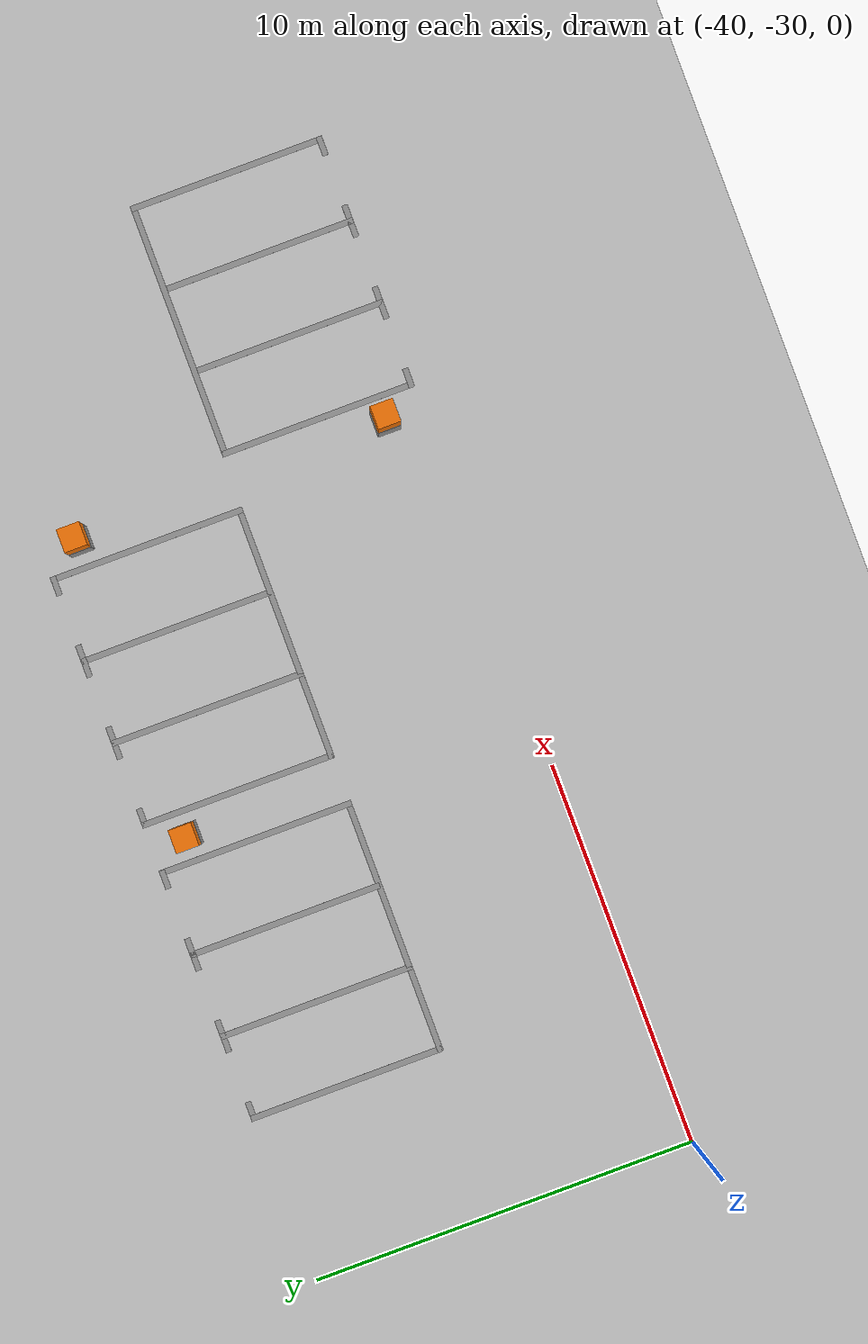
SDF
<sdf version="1.7">
 <world name="default">
  <model name="ground_plane">
   <static>1</static>
   <link name="link">
    <collision name="collision">
     <geometry><plane><normal>0 0 1</normal><size>100 100</size></plane></geometry>
     <surface><friction><ode><mu>100</mu><mu2>50</mu2></ode></friction></surface>
    </collision>
    <visual name="visual">
     <cast_shadows>0</cast_shadows>
     <geometry><plane><normal>0 0 1</normal><size>100 100</size></plane></geometry>
     <material>
      <script><uri>file://media/materials/scripts/gazebo.material</uri><name>Gazebo/Grey</name></script>
     </material>
    </visual>
   </link>
  </model>
  <model name="carport1_4_clone_3">
   <pose>-31.9372 -24.1563 0 0 -0 3.14141</pose>
   <link name="Wall_105">
    <collision name="Wall_105_Collision">
     <geometry><box><size>0.61 0.6 1.5</size></box></geometry>
     <pose>0 0 0.75 0 -0 0</pose>
    </collision>
    <visual name="Wall_105_Visual">
     <pose>0 0 0.75 0 -0 0</pose>
     <geometry><box><size>0.61 0.6 1.5</size></box></geometry>
     <material>
      <script><uri>file://media/materials/scripts/gazebo.material</uri><name>Gazebo/Grey</name></script>
      <ambient>1 1 1 1</ambient>
     </material>
     <meta><layer>0</layer></meta>
    </visual>
    <pose>-3.47407 -3.2865 0 0 -0 0</pose>
   </link>
   <link name="Wall_116">
    <collision name="Wall_116_Collision">
     <geometry><box><size>5.1 0.15 0.005</size></box></geometry>
     <pose>0 0 0.0025 0 -0 0</pose>
    </collision>
    <visual name="Wall_116_Visual">
     <pose>0 0 0.0025 0 -0 0</pose>
     <geometry><box><size>5.1 0.15 0.005</size></box></geometry>
     <material>
      <script><uri>file://media/materials/scripts/gazebo.material</uri><name>Gazebo/Grey</name></script>
      <ambient>1 1 1 1</ambient>
     </material>
     <meta><layer>0</layer></meta>
    </visual>
    <pose>-2.82307 -1.7385 0 0 -0 1.5708</pose>
   </link>
   <link name="Wall_124">
    <collision name="Wall_124_Collision">
     <geometry><box><size>5.1 0.15 0.005</size></box></geometry>
     <pose>0 0 0.0025 0 -0 0</pose>
    </collision>
    <visual name="Wall_124_Visual">
     <pose>0 0 0.0025 0 -0 0</pose>
     <geometry><box><size>5.1 0.15 0.005</size></box></geometry>
     <material>
      <script><uri>file://media/materials/scripts/gazebo.material</uri><name>Gazebo/Grey</name></script>
      <ambient>1 1 1 1</ambient>
     </material>
     <meta><layer>0</layer></meta>
    </visual>
    <pose>3.70393 -1.7305 0 0 -0 1.5708</pose>
   </link>
   <link name="Wall_146">
    <collision name="Wall_146_Collision">
     <geometry><box><size>6.67711 0.15 0.005</size></box></geometry>
     <pose>0 0 0.0025 0 -0 0</pose>
    </collision>
    <visual name="Wall_146_Visual">
     <pose>0 0 0.0025 0 -0 0</pose>
     <geometry><box><size>6.67711 0.15 0.005</size></box></geometry>
     <material>
      <script><uri>file://media/materials/scripts/gazebo.material</uri><name>Gazebo/Grey</name></script>
      <ambient>1 1 1 1</ambient>
     </material>
     <meta><layer>0</layer></meta>
    </visual>
    <pose>0.440428 0.7405 0 0 -0 0.001226</pose>
   </link>
   <link name="Wall_168">
    <collision name="Wall_168_Collision">
     <geometry><box><size>5.1 0.15 0.005</size></box></geometry>
     <pose>0 0 0.0025 0 -0 0</pose>
    </collision>
    <visual name="Wall_168_Visual">
     <pose>0 0 0.0025 0 -0 0</pose>
     <geometry><box><size>5.1 0.15 0.005</size></box></geometry>
     <material>
      <script><uri>file://media/materials/scripts/gazebo.material</uri><name>Gazebo/Grey</name></script>
      <ambient>1 1 1 1</ambient>
     </material>
     <meta><layer>0</layer></meta>
    </visual>
    <pose>-0.64827 -1.73839 0 0 -0 1.57088</pose>
   </link>
   <link name="Wall_173">
    <collision name="Wall_173_Collision">
     <geometry><box><size>5.1 0.15 0.005</size></box></geometry>
     <pose>0 0 0.0025 0 -0 0</pose>
    </collision>
    <visual name="Wall_173_Visual">
     <pose>0 0 0.0025 0 -0 0</pose>
     <geometry><box><size>5.1 0.15 0.005</size></box></geometry>
     <material>
      <script><uri>file://media/materials/scripts/gazebo.material</uri><name>Gazebo/Grey</name></script>
      <ambient>1 1 1 1</ambient>
     </material>
     <meta><layer>0</layer></meta>
    </visual>
    <pose>1.52673 -1.73839 0 0 -0 1.57088</pose>
   </link>
   <link name="Wall_177">
    <collision name="Wall_177_Collision">
     <geometry><box><size>0.6 0.59 3</size></box></geometry>
     <pose>0 0 1.5 0 -0 0</pose>
    </collision>
    <visual name="Wall_177_Visual">
     <pose>0 0 1.5 0 -0 0</pose>
     <geometry><box><size>0.6 0.59 3</size></box></geometry>
     <material>
      <script><uri>file://media/materials/scripts/gazebo.material</uri><name>Gazebo/Grey</name></script>
      <ambient>0.996078 0.47451 0.0196078 1</ambient>
     </material>
     <meta><layer>0</layer></meta>
    </visual>
    <pose>-3.47407 -3.2865 0 0 -0 0</pose>
   </link>
   <link name="Wall_179">
    <collision name="Wall_179_Collision">
     <geometry><box><size>0.5 0.15 0.005</size></box></geometry>
     <pose>0 0 0.0025 0 -0 0</pose>
    </collision>
    <visual name="Wall_179_Visual">
     <pose>0 0 0.0025 0 -0 0</pose>
     <geometry><box><size>0.5 0.15 0.005</size></box></geometry>
     <material>
      <script><uri>file://media/materials/scripts/gazebo.material</uri><name>Gazebo/Grey</name></script>
      <ambient>1 1 1 1</ambient>
     </material>
     <meta><layer>0</layer></meta>
    </visual>
    <pose>-2.64807 -4.2135 0 0 -0 0</pose>
   </link>
   <link name="Wall_181">
    <collision name="Wall_181_Collision">
     <geometry><box><size>0.5 0.15 0.005</size></box></geometry>
     <pose>0 0 0.0025 0 -0 0</pose>
    </collision>
    <visual name="Wall_181_Visual">
     <pose>0 0 0.0025 0 -0 0</pose>
     <geometry><box><size>0.5 0.15 0.005</size></box></geometry>
     <material>
      <script><uri>file://media/materials/scripts/gazebo.material</uri><name>Gazebo/Grey</name></script>
      <ambient>1 1 1 1</ambient>
     </material>
     <meta><layer>0</layer></meta>
    </visual>
    <pose>-0.823072 -4.2135 0 0 -0 3.14159</pose>
   </link>
   <link name="Wall_183">
    <collision name="Wall_183_Collision">
     <geometry><box><size>0.5 0.15 0.005</size></box></geometry>
     <pose>0 0 0.0025 0 -0 0</pose>
    </collision>
    <visual name="Wall_183_Visual">
     <pose>0 0 0.0025 0 -0 0</pose>
     <geometry><box><size>0.5 0.15 0.005</size></box></geometry>
     <material>
      <script><uri>file://media/materials/scripts/gazebo.material</uri><name>Gazebo/Grey</name></script>
      <ambient>1 1 1 1</ambient>
     </material>
     <meta><layer>0</layer></meta>
    </visual>
    <pose>-0.473072 -4.2135 0 0 -0 0</pose>
   </link>
   <link name="Wall_185">
    <collision name="Wall_185_Collision">
     <geometry><box><size>0.5 0.15 0.005</size></box></geometry>
     <pose>0 0 0.0025 0 -0 0</pose>
    </collision>
    <visual name="Wall_185_Visual">
     <pose>0 0 0.0025 0 -0 0</pose>
     <geometry><box><size>0.5 0.15 0.005</size></box></geometry>
     <material>
      <script><uri>file://media/materials/scripts/gazebo.material</uri><name>Gazebo/Grey</name></script>
      <ambient>1 1 1 1</ambient>
     </material>
     <meta><layer>0</layer></meta>
    </visual>
    <pose>1.35193 -4.2135 0 0 -0 3.14159</pose>
   </link>
   <link name="Wall_187">
    <collision name="Wall_187_Collision">
     <geometry><box><size>0.5 0.15 0.005</size></box></geometry>
     <pose>0 0 0.0025 0 -0 0</pose>
    </collision>
    <visual name="Wall_187_Visual">
     <pose>0 0 0.0025 0 -0 0</pose>
     <geometry><box><size>0.5 0.15 0.005</size></box></geometry>
     <material>
      <script><uri>file://media/materials/scripts/gazebo.material</uri><name>Gazebo/Grey</name></script>
      <ambient>1 1 1 1</ambient>
     </material>
     <meta><layer>0</layer></meta>
    </visual>
    <pose>1.70193 -4.2135 0 0 -0 0</pose>
   </link>
   <link name="Wall_189">
    <collision name="Wall_189_Collision">
     <geometry><box><size>0.5 0.15 0.005</size></box></geometry>
     <pose>0 0 0.0025 0 -0 0</pose>
    </collision>
    <visual name="Wall_189_Visual">
     <pose>0 0 0.0025 0 -0 0</pose>
     <geometry><box><size>0.5 0.15 0.005</size></box></geometry>
     <material>
      <script><uri>file://media/materials/scripts/gazebo.material</uri><name>Gazebo/Grey</name></script>
      <ambient>1 1 1 1</ambient>
     </material>
     <meta><layer>0</layer></meta>
    </visual>
    <pose>3.52893 -4.2055 0 0 -0 3.14159</pose>
   </link>
   <static>1</static>
  </model>
  <model name="carport1_4_clone_4">
   <pose>-24.1308 -24.1527 0 0 -0 3.14141</pose>
   <link name="Wall_105">
    <collision name="Wall_105_Collision">
     <geometry><box><size>0.61 0.6 1.5</size></box></geometry>
     <pose>0 0 0.75 0 -0 0</pose>
    </collision>
    <visual name="Wall_105_Visual">
     <pose>0 0 0.75 0 -0 0</pose>
     <geometry><box><size>0.61 0.6 1.5</size></box></geometry>
     <material>
      <script><uri>file://media/materials/scripts/gazebo.material</uri><name>Gazebo/Grey</name></script>
      <ambient>1 1 1 1</ambient>
     </material>
     <meta><layer>0</layer></meta>
    </visual>
    <pose>-3.47407 -3.2865 0 0 -0 0</pose>
   </link>
   <link name="Wall_116">
    <collision name="Wall_116_Collision">
     <geometry><box><size>5.1 0.15 0.005</size></box></geometry>
     <pose>0 0 0.0025 0 -0 0</pose>
    </collision>
    <visual name="Wall_116_Visual">
     <pose>0 0 0.0025 0 -0 0</pose>
     <geometry><box><size>5.1 0.15 0.005</size></box></geometry>
     <material>
      <script><uri>file://media/materials/scripts/gazebo.material</uri><name>Gazebo/Grey</name></script>
      <ambient>1 1 1 1</ambient>
     </material>
     <meta><layer>0</layer></meta>
    </visual>
    <pose>-2.82307 -1.7385 0 0 -0 1.5708</pose>
   </link>
   <link name="Wall_124">
    <collision name="Wall_124_Collision">
     <geometry><box><size>5.1 0.15 0.005</size></box></geometry>
     <pose>0 0 0.0025 0 -0 0</pose>
    </collision>
    <visual name="Wall_124_Visual">
     <pose>0 0 0.0025 0 -0 0</pose>
     <geometry><box><size>5.1 0.15 0.005</size></box></geometry>
     <material>
      <script><uri>file://media/materials/scripts/gazebo.material</uri><name>Gazebo/Grey</name></script>
      <ambient>1 1 1 1</ambient>
     </material>
     <meta><layer>0</layer></meta>
    </visual>
    <pose>3.70393 -1.7305 0 0 -0 1.5708</pose>
   </link>
   <link name="Wall_146">
    <collision name="Wall_146_Collision">
     <geometry><box><size>6.67711 0.15 0.005</size></box></geometry>
     <pose>0 0 0.0025 0 -0 0</pose>
    </collision>
    <visual name="Wall_146_Visual">
     <pose>0 0 0.0025 0 -0 0</pose>
     <geometry><box><size>6.67711 0.15 0.005</size></box></geometry>
     <material>
      <script><uri>file://media/materials/scripts/gazebo.material</uri><name>Gazebo/Grey</name></script>
      <ambient>1 1 1 1</ambient>
     </material>
     <meta><layer>0</layer></meta>
    </visual>
    <pose>0.440428 0.7405 0 0 -0 0.001226</pose>
   </link>
   <link name="Wall_168">
    <collision name="Wall_168_Collision">
     <geometry><box><size>5.1 0.15 0.005</size></box></geometry>
     <pose>0 0 0.0025 0 -0 0</pose>
    </collision>
    <visual name="Wall_168_Visual">
     <pose>0 0 0.0025 0 -0 0</pose>
     <geometry><box><size>5.1 0.15 0.005</size></box></geometry>
     <material>
      <script><uri>file://media/materials/scripts/gazebo.material</uri><name>Gazebo/Grey</name></script>
      <ambient>1 1 1 1</ambient>
     </material>
     <meta><layer>0</layer></meta>
    </visual>
    <pose>-0.64827 -1.73839 0 0 -0 1.57088</pose>
   </link>
   <link name="Wall_173">
    <collision name="Wall_173_Collision">
     <geometry><box><size>5.1 0.15 0.005</size></box></geometry>
     <pose>0 0 0.0025 0 -0 0</pose>
    </collision>
    <visual name="Wall_173_Visual">
     <pose>0 0 0.0025 0 -0 0</pose>
     <geometry><box><size>5.1 0.15 0.005</size></box></geometry>
     <material>
      <script><uri>file://media/materials/scripts/gazebo.material</uri><name>Gazebo/Grey</name></script>
      <ambient>1 1 1 1</ambient>
     </material>
     <meta><layer>0</layer></meta>
    </visual>
    <pose>1.52673 -1.73839 0 0 -0 1.57088</pose>
   </link>
   <link name="Wall_177">
    <collision name="Wall_177_Collision">
     <geometry><box><size>0.6 0.59 3</size></box></geometry>
     <pose>0 0 1.5 0 -0 0</pose>
    </collision>
    <visual name="Wall_177_Visual">
     <pose>0 0 1.5 0 -0 0</pose>
     <geometry><box><size>0.6 0.59 3</size></box></geometry>
     <material>
      <script><uri>file://media/materials/scripts/gazebo.material</uri><name>Gazebo/Grey</name></script>
      <ambient>0.996078 0.47451 0.0196078 1</ambient>
     </material>
     <meta><layer>0</layer></meta>
    </visual>
    <pose>-3.47407 -3.2865 0 0 -0 0</pose>
   </link>
   <link name="Wall_179">
    <collision name="Wall_179_Collision">
     <geometry><box><size>0.5 0.15 0.005</size></box></geometry>
     <pose>0 0 0.0025 0 -0 0</pose>
    </collision>
    <visual name="Wall_179_Visual">
     <pose>0 0 0.0025 0 -0 0</pose>
     <geometry><box><size>0.5 0.15 0.005</size></box></geometry>
     <material>
      <script><uri>file://media/materials/scripts/gazebo.material</uri><name>Gazebo/Grey</name></script>
      <ambient>1 1 1 1</ambient>
     </material>
     <meta><layer>0</layer></meta>
    </visual>
    <pose>-2.64807 -4.2135 0 0 -0 0</pose>
   </link>
   <link name="Wall_181">
    <collision name="Wall_181_Collision">
     <geometry><box><size>0.5 0.15 0.005</size></box></geometry>
     <pose>0 0 0.0025 0 -0 0</pose>
    </collision>
    <visual name="Wall_181_Visual">
     <pose>0 0 0.0025 0 -0 0</pose>
     <geometry><box><size>0.5 0.15 0.005</size></box></geometry>
     <material>
      <script><uri>file://media/materials/scripts/gazebo.material</uri><name>Gazebo/Grey</name></script>
      <ambient>1 1 1 1</ambient>
     </material>
     <meta><layer>0</layer></meta>
    </visual>
    <pose>-0.823072 -4.2135 0 0 -0 3.14159</pose>
   </link>
   <link name="Wall_183">
    <collision name="Wall_183_Collision">
     <geometry><box><size>0.5 0.15 0.005</size></box></geometry>
     <pose>0 0 0.0025 0 -0 0</pose>
    </collision>
    <visual name="Wall_183_Visual">
     <pose>0 0 0.0025 0 -0 0</pose>
     <geometry><box><size>0.5 0.15 0.005</size></box></geometry>
     <material>
      <script><uri>file://media/materials/scripts/gazebo.material</uri><name>Gazebo/Grey</name></script>
      <ambient>1 1 1 1</ambient>
     </material>
     <meta><layer>0</layer></meta>
    </visual>
    <pose>-0.473072 -4.2135 0 0 -0 0</pose>
   </link>
   <link name="Wall_185">
    <collision name="Wall_185_Collision">
     <geometry><box><size>0.5 0.15 0.005</size></box></geometry>
     <pose>0 0 0.0025 0 -0 0</pose>
    </collision>
    <visual name="Wall_185_Visual">
     <pose>0 0 0.0025 0 -0 0</pose>
     <geometry><box><size>0.5 0.15 0.005</size></box></geometry>
     <material>
      <script><uri>file://media/materials/scripts/gazebo.material</uri><name>Gazebo/Grey</name></script>
      <ambient>1 1 1 1</ambient>
     </material>
     <meta><layer>0</layer></meta>
    </visual>
    <pose>1.35193 -4.2135 0 0 -0 3.14159</pose>
   </link>
   <link name="Wall_187">
    <collision name="Wall_187_Collision">
     <geometry><box><size>0.5 0.15 0.005</size></box></geometry>
     <pose>0 0 0.0025 0 -0 0</pose>
    </collision>
    <visual name="Wall_187_Visual">
     <pose>0 0 0.0025 0 -0 0</pose>
     <geometry><box><size>0.5 0.15 0.005</size></box></geometry>
     <material>
      <script><uri>file://media/materials/scripts/gazebo.material</uri><name>Gazebo/Grey</name></script>
      <ambient>1 1 1 1</ambient>
     </material>
     <meta><layer>0</layer></meta>
    </visual>
    <pose>1.70193 -4.2135 0 0 -0 0</pose>
   </link>
   <link name="Wall_189">
    <collision name="Wall_189_Collision">
     <geometry><box><size>0.5 0.15 0.005</size></box></geometry>
     <pose>0 0 0.0025 0 -0 0</pose>
    </collision>
    <visual name="Wall_189_Visual">
     <pose>0 0 0.0025 0 -0 0</pose>
     <geometry><box><size>0.5 0.15 0.005</size></box></geometry>
     <material>
      <script><uri>file://media/materials/scripts/gazebo.material</uri><name>Gazebo/Grey</name></script>
      <ambient>1 1 1 1</ambient>
     </material>
     <meta><layer>0</layer></meta>
    </visual>
    <pose>3.52893 -4.2055 0 0 -0 3.14159</pose>
   </link>
   <static>1</static>
  </model>
  <model name="carport1_3_clone_clone_5">
   <pose>-17.0216 -25.7748 0 0 -0 0</pose>
   <link name="Wall_105">
    <collision name="Wall_105_Collision">
     <geometry><box><size>0.61 0.6 1.5</size></box></geometry>
     <pose>0 0 0.75 0 -0 0</pose>
    </collision>
    <visual name="Wall_105_Visual">
     <pose>0 0 0.75 0 -0 0</pose>
     <geometry><box><size>0.61 0.6 1.5</size></box></geometry>
     <material>
      <script><uri>file://media/materials/scripts/gazebo.material</uri><name>Gazebo/Grey</name></script>
      <ambient>1 1 1 1</ambient>
     </material>
     <meta><layer>0</layer></meta>
    </visual>
    <pose>-3.47407 -3.2865 0 0 -0 0</pose>
   </link>
   <link name="Wall_116">
    <collision name="Wall_116_Collision">
     <geometry><box><size>5.1 0.15 0.005</size></box></geometry>
     <pose>0 0 0.0025 0 -0 0</pose>
    </collision>
    <visual name="Wall_116_Visual">
     <pose>0 0 0.0025 0 -0 0</pose>
     <geometry><box><size>5.1 0.15 0.005</size></box></geometry>
     <material>
      <script><uri>file://media/materials/scripts/gazebo.material</uri><name>Gazebo/Grey</name></script>
      <ambient>1 1 1 1</ambient>
     </material>
     <meta><layer>0</layer></meta>
    </visual>
    <pose>-2.82307 -1.7385 0 0 -0 1.5708</pose>
   </link>
   <link name="Wall_124">
    <collision name="Wall_124_Collision">
     <geometry><box><size>5.1 0.15 0.005</size></box></geometry>
     <pose>0 0 0.0025 0 -0 0</pose>
    </collision>
    <visual name="Wall_124_Visual">
     <pose>0 0 0.0025 0 -0 0</pose>
     <geometry><box><size>5.1 0.15 0.005</size></box></geometry>
     <material>
      <script><uri>file://media/materials/scripts/gazebo.material</uri><name>Gazebo/Grey</name></script>
      <ambient>1 1 1 1</ambient>
     </material>
     <meta><layer>0</layer></meta>
    </visual>
    <pose>3.70393 -1.7305 0 0 -0 1.5708</pose>
   </link>
   <link name="Wall_146">
    <collision name="Wall_146_Collision">
     <geometry><box><size>6.67711 0.15 0.005</size></box></geometry>
     <pose>0 0 0.0025 0 -0 0</pose>
    </collision>
    <visual name="Wall_146_Visual">
     <pose>0 0 0.0025 0 -0 0</pose>
     <geometry><box><size>6.67711 0.15 0.005</size></box></geometry>
     <material>
      <script><uri>file://media/materials/scripts/gazebo.material</uri><name>Gazebo/Grey</name></script>
      <ambient>1 1 1 1</ambient>
     </material>
     <meta><layer>0</layer></meta>
    </visual>
    <pose>0.440428 0.7405 0 0 -0 0.001226</pose>
   </link>
   <link name="Wall_168">
    <collision name="Wall_168_Collision">
     <geometry><box><size>5.1 0.15 0.005</size></box></geometry>
     <pose>0 0 0.0025 0 -0 0</pose>
    </collision>
    <visual name="Wall_168_Visual">
     <pose>0 0 0.0025 0 -0 0</pose>
     <geometry><box><size>5.1 0.15 0.005</size></box></geometry>
     <material>
      <script><uri>file://media/materials/scripts/gazebo.material</uri><name>Gazebo/Grey</name></script>
      <ambient>1 1 1 1</ambient>
     </material>
     <meta><layer>0</layer></meta>
    </visual>
    <pose>-0.64827 -1.73839 0 0 -0 1.57088</pose>
   </link>
   <link name="Wall_173">
    <collision name="Wall_173_Collision">
     <geometry><box><size>5.1 0.15 0.005</size></box></geometry>
     <pose>0 0 0.0025 0 -0 0</pose>
    </collision>
    <visual name="Wall_173_Visual">
     <pose>0 0 0.0025 0 -0 0</pose>
     <geometry><box><size>5.1 0.15 0.005</size></box></geometry>
     <material>
      <script><uri>file://media/materials/scripts/gazebo.material</uri><name>Gazebo/Grey</name></script>
      <ambient>1 1 1 1</ambient>
     </material>
     <meta><layer>0</layer></meta>
    </visual>
    <pose>1.52673 -1.73839 0 0 -0 1.57088</pose>
   </link>
   <link name="Wall_177">
    <collision name="Wall_177_Collision">
     <geometry><box><size>0.6 0.59 3</size></box></geometry>
     <pose>0 0 1.5 0 -0 0</pose>
    </collision>
    <visual name="Wall_177_Visual">
     <pose>0 0 1.5 0 -0 0</pose>
     <geometry><box><size>0.6 0.59 3</size></box></geometry>
     <material>
      <script><uri>file://media/materials/scripts/gazebo.material</uri><name>Gazebo/Grey</name></script>
      <ambient>0.996078 0.47451 0.0196078 1</ambient>
     </material>
     <meta><layer>0</layer></meta>
    </visual>
    <pose>-3.47407 -3.2865 0 0 -0 0</pose>
   </link>
   <link name="Wall_179">
    <collision name="Wall_179_Collision">
     <geometry><box><size>0.5 0.15 0.005</size></box></geometry>
     <pose>0 0 0.0025 0 -0 0</pose>
    </collision>
    <visual name="Wall_179_Visual">
     <pose>0 0 0.0025 0 -0 0</pose>
     <geometry><box><size>0.5 0.15 0.005</size></box></geometry>
     <material>
      <script><uri>file://media/materials/scripts/gazebo.material</uri><name>Gazebo/Grey</name></script>
      <ambient>1 1 1 1</ambient>
     </material>
     <meta><layer>0</layer></meta>
    </visual>
    <pose>-2.64807 -4.2135 0 0 -0 0</pose>
   </link>
   <link name="Wall_181">
    <collision name="Wall_181_Collision">
     <geometry><box><size>0.5 0.15 0.005</size></box></geometry>
     <pose>0 0 0.0025 0 -0 0</pose>
    </collision>
    <visual name="Wall_181_Visual">
     <pose>0 0 0.0025 0 -0 0</pose>
     <geometry><box><size>0.5 0.15 0.005</size></box></geometry>
     <material>
      <script><uri>file://media/materials/scripts/gazebo.material</uri><name>Gazebo/Grey</name></script>
      <ambient>1 1 1 1</ambient>
     </material>
     <meta><layer>0</layer></meta>
    </visual>
    <pose>-0.823072 -4.2135 0 0 -0 3.14159</pose>
   </link>
   <link name="Wall_183">
    <collision name="Wall_183_Collision">
     <geometry><box><size>0.5 0.15 0.005</size></box></geometry>
     <pose>0 0 0.0025 0 -0 0</pose>
    </collision>
    <visual name="Wall_183_Visual">
     <pose>0 0 0.0025 0 -0 0</pose>
     <geometry><box><size>0.5 0.15 0.005</size></box></geometry>
     <material>
      <script><uri>file://media/materials/scripts/gazebo.material</uri><name>Gazebo/Grey</name></script>
      <ambient>1 1 1 1</ambient>
     </material>
     <meta><layer>0</layer></meta>
    </visual>
    <pose>-0.473072 -4.2135 0 0 -0 0</pose>
   </link>
   <link name="Wall_185">
    <collision name="Wall_185_Collision">
     <geometry><box><size>0.5 0.15 0.005</size></box></geometry>
     <pose>0 0 0.0025 0 -0 0</pose>
    </collision>
    <visual name="Wall_185_Visual">
     <pose>0 0 0.0025 0 -0 0</pose>
     <geometry><box><size>0.5 0.15 0.005</size></box></geometry>
     <material>
      <script><uri>file://media/materials/scripts/gazebo.material</uri><name>Gazebo/Grey</name></script>
      <ambient>1 1 1 1</ambient>
     </material>
     <meta><layer>0</layer></meta>
    </visual>
    <pose>1.35193 -4.2135 0 0 -0 3.14159</pose>
   </link>
   <link name="Wall_187">
    <collision name="Wall_187_Collision">
     <geometry><box><size>0.5 0.15 0.005</size></box></geometry>
     <pose>0 0 0.0025 0 -0 0</pose>
    </collision>
    <visual name="Wall_187_Visual">
     <pose>0 0 0.0025 0 -0 0</pose>
     <geometry><box><size>0.5 0.15 0.005</size></box></geometry>
     <material>
      <script><uri>file://media/materials/scripts/gazebo.material</uri><name>Gazebo/Grey</name></script>
      <ambient>1 1 1 1</ambient>
     </material>
     <meta><layer>0</layer></meta>
    </visual>
    <pose>1.70193 -4.2135 0 0 -0 0</pose>
   </link>
   <link name="Wall_189">
    <collision name="Wall_189_Collision">
     <geometry><box><size>0.5 0.15 0.005</size></box></geometry>
     <pose>0 0 0.0025 0 -0 0</pose>
    </collision>
    <visual name="Wall_189_Visual">
     <pose>0 0 0.0025 0 -0 0</pose>
     <geometry><box><size>0.5 0.15 0.005</size></box></geometry>
     <material>
      <script><uri>file://media/materials/scripts/gazebo.material</uri><name>Gazebo/Grey</name></script>
      <ambient>1 1 1 1</ambient>
     </material>
     <meta><layer>0</layer></meta>
    </visual>
    <pose>3.52893 -4.2055 0 0 -0 3.14159</pose>
   </link>
   <static>1</static>
  </model>
 </world>
</sdf>
